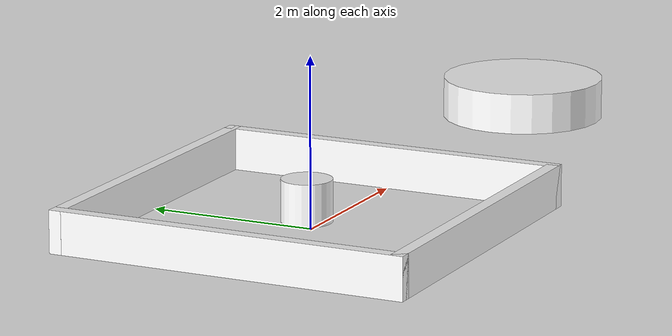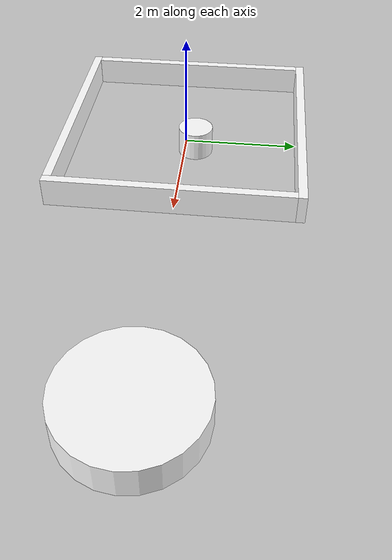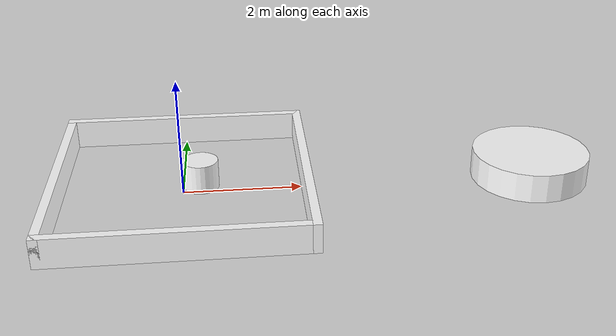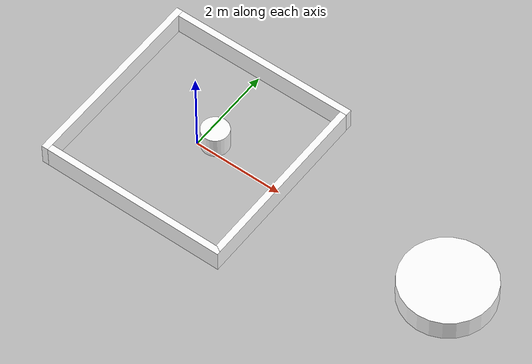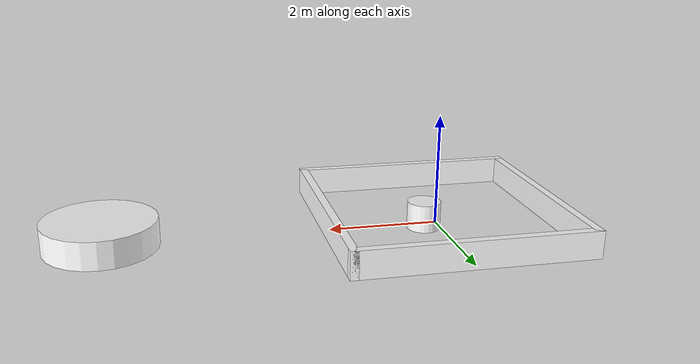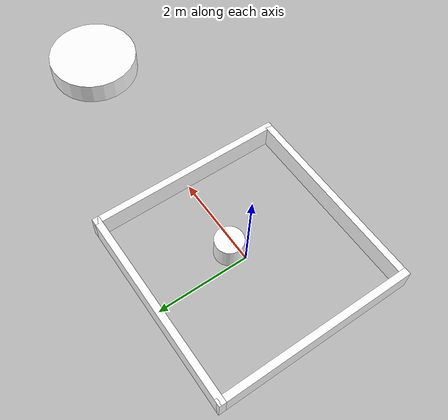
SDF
<?xml version='1.0'?>
<sdf version='1.6'>
  <model name='simple'>
    <link name='fixed'></link>
    <pose frame=''>0 0 0 0 -0 0</pose>
    <link name='Wall_0'>
      <collision name='Wall_0_Collision'>
        <geometry>
          <box>
            <size>4.3 0.15 0.5</size>
          </box>
        </geometry>
        <pose frame=''>0 0 0.25 0 -0 0</pose>
      </collision>
      <visual name='Wall_0_Visual'>
        <pose frame=''>0 0 0.25 0 -0 0</pose>
        <geometry>
          <box>
            <size>4.3 0.15 0.5</size>
          </box>
        </geometry>
        <material>
          <ambient>1 1 1 1</ambient>
        </material>
      </visual>
      <pose frame=''>0 2.075 0 0 -0 0</pose>
    </link>
    <link name='Wall_2'>
      <collision name='Wall_2_Collision'>
        <geometry>
          <box>
            <size>4.3 0.15 0.5</size>
          </box>
        </geometry>
        <pose frame=''>0 0 0.25 0 -0 0</pose>
      </collision>
      <visual name='Wall_2_Visual'>
        <pose frame=''>0 0 0.25 0 -0 0</pose>
        <geometry>
          <box>
            <size>4.3 0.15 0.5</size>
          </box>
        </geometry>
        <material>
          <ambient>1 1 1 1</ambient>
        </material>
      </visual>
      <pose frame=''>-2.075 0 0 0 0 -1.5708</pose>
    </link>
    <link name='Wall_3'>
      <collision name='Wall_3_Collision'>
        <geometry>
          <box>
            <size>4.3 0.15 0.5</size>
          </box>
        </geometry>
        <pose frame=''>0 0 0.25 0 -0 0</pose>
      </collision>
      <visual name='Wall_3_Visual'>
        <pose frame=''>0 0 0.25 0 -0 0</pose>
        <geometry>
          <box>
            <size>4.3 0.15 0.5</size>
          </box>
        </geometry>
        <material>
          <ambient>1 1 1 1</ambient>
        </material>
      </visual>
      <pose frame=''>0 -2.075 0 0 -0 0</pose>
    </link>
    <link name='Wall_4'>
      <collision name='Wall_4_Collision'>
        <geometry>
          <box>
            <size>4.3 0.15 0.5</size>
          </box>
        </geometry>
        <pose frame=''>0 0 0.25 0 -0 0</pose>
      </collision>
      <visual name='Wall_4_Visual'>
        <pose frame=''>0 0 0.25 0 -0 0</pose>
        <geometry>
          <box>
            <size>4.3 0.15 0.5</size>
          </box>
        </geometry>
        <material>
          <ambient>1 1 1 1</ambient>
        </material>
      </visual>
      <pose frame=''>2.075 0 0 0 -0 1.5708</pose>
    </link>

    <link name='Cylinder_1'>
      <collision name='Cylinder_1_Collision'>
        <geometry>
          <cylinder>
            <radius>0.3</radius>
            <length>0.5</length>
          </cylinder>
        </geometry>
        <pose frame=''>0 0 0.25 0 -0 0</pose>
      </collision>
      <visual name='Cylinder_1_Visual'>
        <pose frame=''>0 0 0.25 0 -0 0</pose>
        <geometry>
          <cylinder>
            <radius>0.3</radius>
            <length>0.5</length>
          </cylinder>
        </geometry>
        <material>
          <ambient>1 1 1 1</ambient>
        </material>
      </visual>
      <pose frame=''>0.3 0.2 0 0 0 0</pose>
    </link>

    <link name='Cylinder_2'>
      <collision name='Cylinder_2_Collision'>
        <geometry>
          <cylinder>
            <radius>1.0</radius>
            <length>0.5</length>
          </cylinder>
        </geometry>
        <pose frame=''>0 0 0.25 0 -0 0</pose>
      </collision>
      <visual name='Cylinder_2_Visual'>
        <pose frame=''>0 0 0.25 0 -0 0</pose>
        <geometry>
          <cylinder>
            <radius>1.0</radius>
            <length>0.5</length>
          </cylinder>
        </geometry>
        <material>
          <ambient>1 1 1 1</ambient>
        </material>
      </visual>
      <pose frame=''>6.0 0.0 0 0 0 0</pose>
    </link>
    <static>1</static>
  </model>
</sdf>
